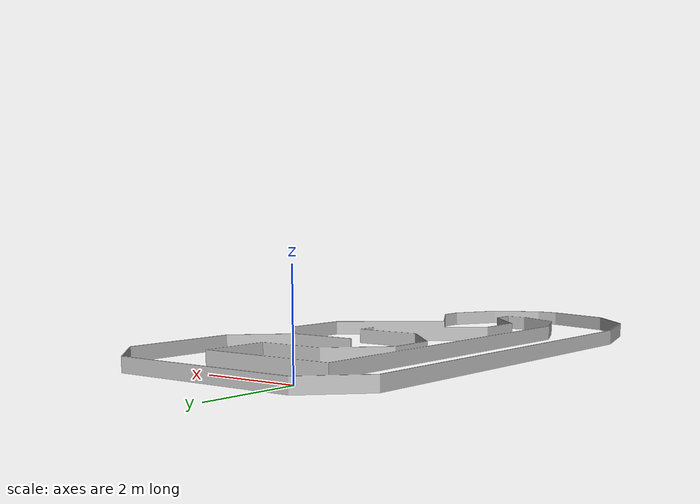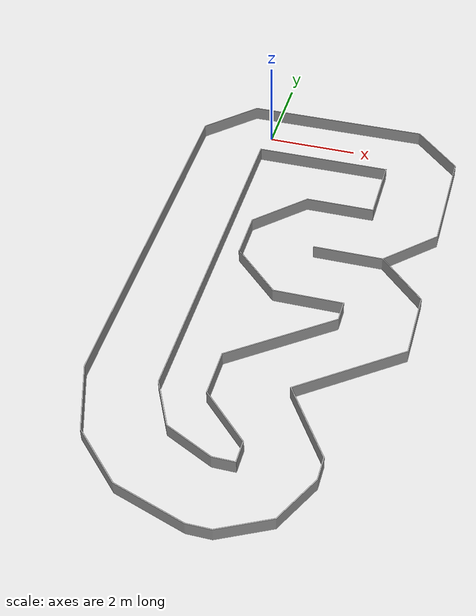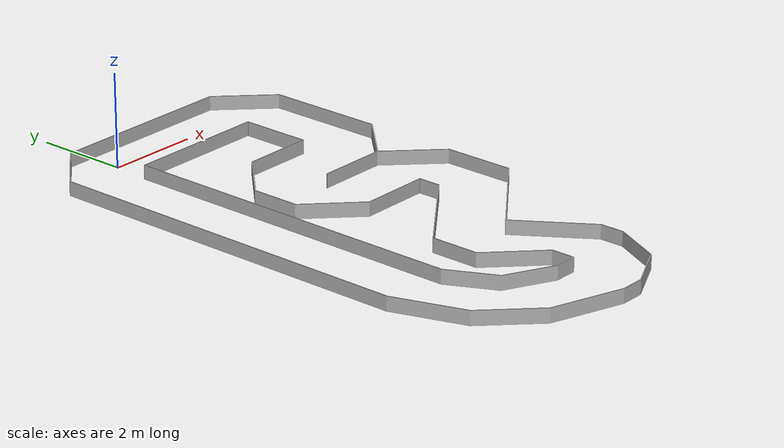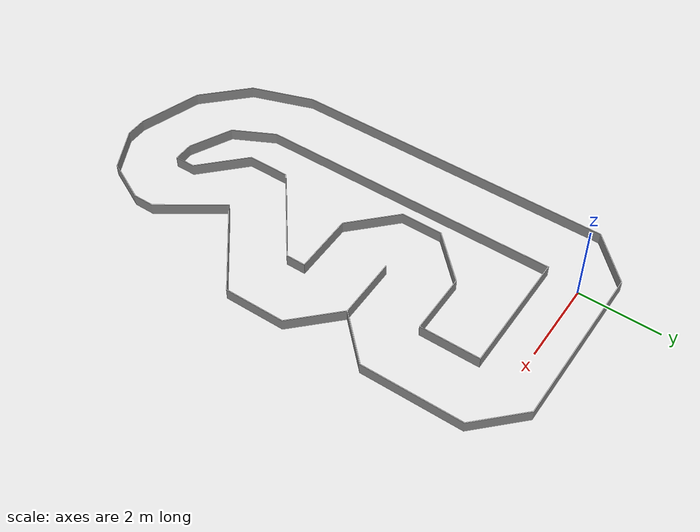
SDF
<?xml version='1.0'?>
<sdf version='1.4'>
  <model name="acafe_large">
    <link name="link">
      <pose>4.5 0.75 0 0 -0 3.14159</pose>
      <collision name="collision">
        <geometry>
          <mesh>
            <uri>model://racecar_description/meshes/acafe_large.dae</uri>
          </mesh>
        </geometry>
      </collision>
      <visual name="visual">
        <geometry>
          <mesh>
            <uri>model://racecar_description/meshes/acafe_large.dae</uri>
          </mesh>
        </geometry>
      </visual>
    </link>
    <static>1</static>
  </model>
</sdf>
